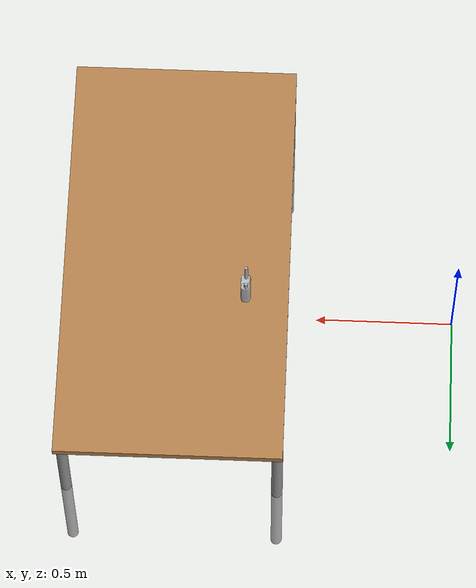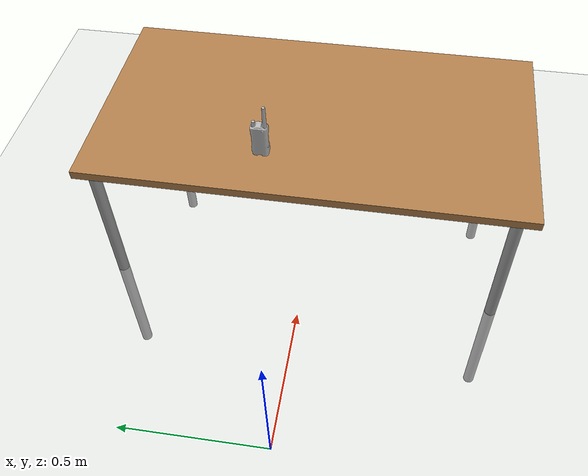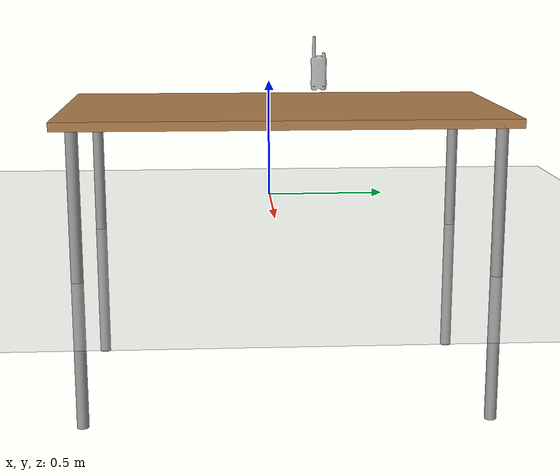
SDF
<sdf version='1.9'>
  <world name='empty'>
    <physics name='1ms' type='ignored'>
      <max_step_size>0.001</max_step_size>
      <real_time_factor>1</real_time_factor>
      <real_time_update_rate>1000</real_time_update_rate>
    </physics>
    <plugin name='gz::sim::systems::Physics' filename='ignition-gazebo-physics-system'/>
    <plugin name='gz::sim::systems::UserCommands' filename='ignition-gazebo-user-commands-system'/>
    <plugin name='gz::sim::systems::SceneBroadcaster' filename='ignition-gazebo-scene-broadcaster-system'/>
    <plugin name='gz::sim::systems::Contact' filename='ignition-gazebo-contact-system'/>
    <plugin filename="gz-sim-sensors-system" name="gz::sim::systems::Sensors"/>
    <gravity>0 0 -9.8</gravity>
    <magnetic_field>6e-06 2.3e-05 -4.2e-05</magnetic_field>
    <atmosphere type='adiabatic'/>
    <scene>
      <ambient>0.4 0.4 0.4 1</ambient>
      <background>0.7 0.7 0.7 1</background>
      <shadows>true</shadows>
    </scene>
    <model name='ground_plane'>
      <static>true</static>
      <link name='link'>
        <collision name='collision'>
          <geometry>
            <plane>
              <normal>0 0 1</normal>
              <size>3 3</size>
            </plane>
          </geometry>
          <surface>
            <friction>
              <ode/>
            </friction>
            <bounce/>
            <contact/>
          </surface>
        </collision>
        <visual name='visual'>
          <geometry>
            <plane>
              <normal>0 0 1</normal>
              <size>3 3</size>
            </plane>
          </geometry>
          <material>
            <ambient>0.8 0.8 0.8 1</ambient>
            <diffuse>0.8 0.8 0.8 1</diffuse>
            <specular>0.8 0.8 0.8 1</specular>
          </material>
        </visual>
        <pose>0 0 0 0 -0 0</pose>
        <inertial>
          <pose>0 0 0 0 -0 0</pose>
          <mass>1</mass>
          <inertia>
            <ixx>2.4170000000000001e-05</ixx>
            <ixy>0</ixy>
            <ixz>0</ixz>
            <iyy>8.6669999999999995e-05</iyy>
            <iyz>0</iyz>
            <izz>0.00010417</izz>
          </inertia>
        </inertial>
        <enable_wind>false</enable_wind>
      </link>
      <pose>0 0 0 0 -0 0</pose>
      <self_collide>false</self_collide>
    </model>
    <model name='Radio'>
      <link name='link'>
        <visual name='visual'>
          <geometry>
            <mesh>
              <uri>model://radio/6/meshes/Radio.dae</uri>
            </mesh>
          </geometry>
        </visual>
        <collision name='collision'>
          <geometry>
            <mesh>
              <uri>model://radio/6/meshes/Radio.dae</uri>
            </mesh>
          </geometry>
        </collision>
        <pose>0 0 0.05 0 -0 0</pose>
        <inertial>
          <pose>0 0 0.05 0 -0 0</pose>
          <mass>0.10000000000000001</mass>
          <inertia>
            <ixx>2.4170000000000001e-05</ixx>
            <ixy>0</ixy>
            <ixz>0</ixz>
            <iyy>8.6669999999999995e-05</iyy>
            <iyz>0</iyz>
            <izz>0.00010417</izz>
          </inertia>
        </inertial>
        <enable_wind>false</enable_wind>
      </link>
      <pose>0.750871 0.148689 0.491463 0 0 -1.57</pose>
      <static>false</static>
      <self_collide>false</self_collide>
    </model>
    <include>
      <uri>model://table/4</uri>
      <name>low_table</name>
      <pose>1 0 -0.5 0 -0 1.57</pose>
    </include>
    <light name='sun' type='directional'>
      <pose>0 0 10 0 -0 0</pose>
      <cast_shadows>true</cast_shadows>
      <intensity>1</intensity>
      <direction>-0.5 0.1 -0.9</direction>
      <diffuse>0.8 0.8 0.8 1</diffuse>
      <specular>0.2 0.2 0.2 1</specular>
      <attenuation>
        <range>1000</range>
        <linear>0.01</linear>
        <constant>0.90000000000000002</constant>
        <quadratic>0.001</quadratic>
      </attenuation>
      <spot>
        <inner_angle>0</inner_angle>
        <outer_angle>0</outer_angle>
        <falloff>0</falloff>
      </spot>
    </light>
  </world>
</sdf>

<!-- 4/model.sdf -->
<sdf version="1.5">
    <model name="Table">
        <static>true</static>
        <link name="link">
            <collision name="surface">
                <pose>0 0 1.0 0 0 0</pose>
                <geometry>
                    <box>
                        <size>1.5 0.8 0.03</size>
                    </box>
                </geometry>
                <surface>
                    <friction>
                        <ode>
                            <mu>0.6</mu>
                            <mu2>0.6</mu2>
                        </ode>
                    </friction>
                </surface>
            </collision>
            <visual name="visual1">
                <pose>0 0 1.0 0 0 0</pose>
                <geometry>
                    <box>
                        <size>1.5 0.8 0.03</size>
                    </box>
                </geometry>
                <material>
                    <diffuse>1.0 1.0 1.0</diffuse>
                    <script>
                        <uri>file://media/materials/scripts/gazebo.material</uri>
                        <name>Gazebo/Wood</name>
                    </script>
                    <!-- PBR for Ignition, material scripts for gazebo classic-->
                    <pbr>
                        <metal>
                            <albedo_map>https://fuel.ignitionrobotics.org/1.0/openrobotics/models/table/4/files/Table_Diffuse.jpg</albedo_map>
                        </metal>
                    </pbr>
                </material>
            </visual>
            <collision name="front_left_leg">
                <pose>0.68 0.38 0.5 0 0 0</pose>
                <geometry>
                    <cylinder>
                        <radius>0.02</radius>
                        <length>1.0</length>
                    </cylinder>
                </geometry>
            </collision>
            <visual name="front_left_leg">
                <pose>0.68 0.38 0.5 0 0 0</pose>
                <geometry>
                    <cylinder>
                        <radius>0.02</radius>
                        <length>1.0</length>
                    </cylinder>
                </geometry>
                <material>
                    <diffuse>0.5 0.5 0.5</diffuse>
                    <script>
                        <uri>file://media/materials/scripts/gazebo.material</uri>
                        <name>Gazebo/Grey</name>
                    </script>
                </material>
            </visual>
            <collision name="front_right_leg">
                <pose>0.68 -0.38 0.5 0 0 0</pose>
                <geometry>
                    <cylinder>
                        <radius>0.02</radius>
                        <length>1.0</length>
                    </cylinder>
                </geometry>
            </collision>
            <visual name="front_right_leg">
                <pose>0.68 -0.38 0.5 0 0 0</pose>
                <geometry>
                    <cylinder>
                        <radius>0.02</radius>
                        <length>1.0</length>
                    </cylinder>
                </geometry>
                <material>
                    <diffuse>0.5 0.5 0.5</diffuse>
                    <script>
                        <uri>file://media/materials/scripts/gazebo.material</uri>
                        <name>Gazebo/Grey</name>
                    </script>
                </material>
            </visual>
            <collision name="back_right_leg">
                <pose>-0.68 -0.38 0.5 0 0 0</pose>
                <geometry>
                    <cylinder>
                        <radius>0.02</radius>
                        <length>1.0</length>
                    </cylinder>
                </geometry>
            </collision>
            <visual name="back_right_leg">
                <pose>-0.68 -0.38 0.5 0 0 0</pose>
                <geometry>
                    <cylinder>
                        <radius>0.02</radius>
                        <length>1.0</length>
                    </cylinder>
                </geometry>
                <material>
                    <diffuse>0.5 0.5 0.5</diffuse>
                    <script>
                        <uri>file://media/materials/scripts/gazebo.material</uri>
                        <name>Gazebo/Grey</name>
                    </script>
                </material>
            </visual>
            <collision name="back_left_leg">
                <pose>-0.68 0.38 0.5 0 0 0</pose>
                <geometry>
                    <cylinder>
                        <radius>0.02</radius>
                        <length>1.0</length>
                    </cylinder>
                </geometry>
            </collision>
            <visual name="back_left_leg">
                <pose>-0.68 0.38 0.5 0 0 0</pose>
                <geometry>
                    <cylinder>
                        <radius>0.02</radius>
                        <length>1.0</length>
                    </cylinder>
                </geometry>
                <material>
                    <diffuse>0.5 0.5 0.5</diffuse>
                    <script>
                        <uri>file://media/materials/scripts/gazebo.material</uri>
                        <name>Gazebo/Grey</name>
                    </script>
                </material>
            </visual>
        </link>
    </model>
</sdf>
